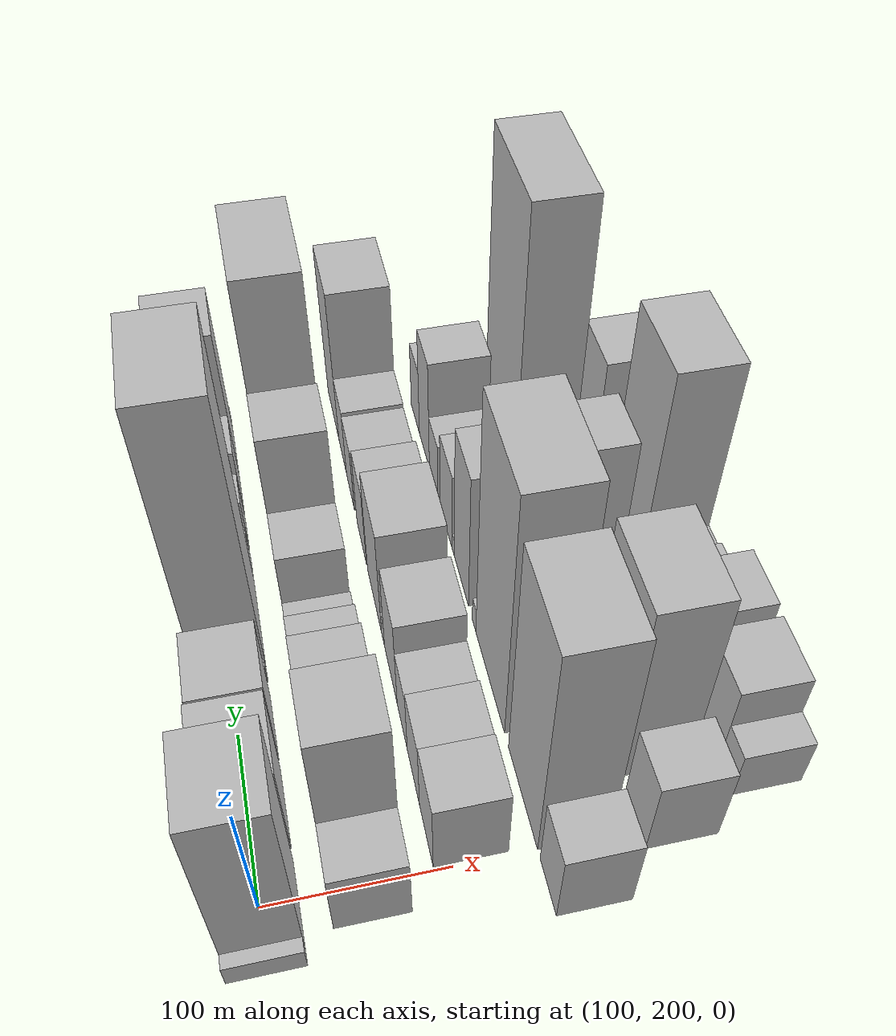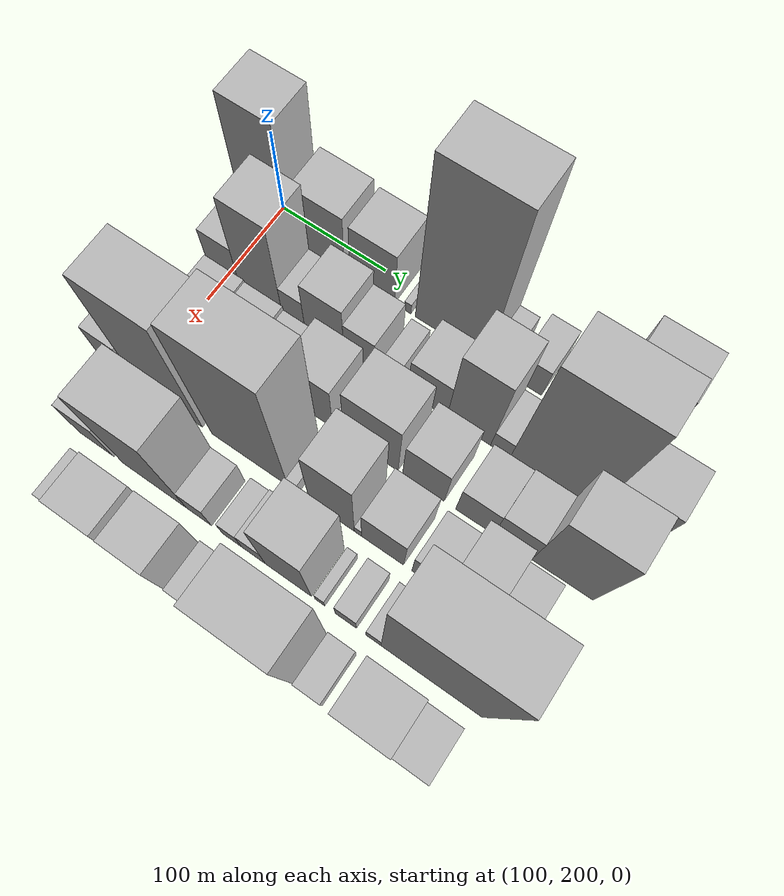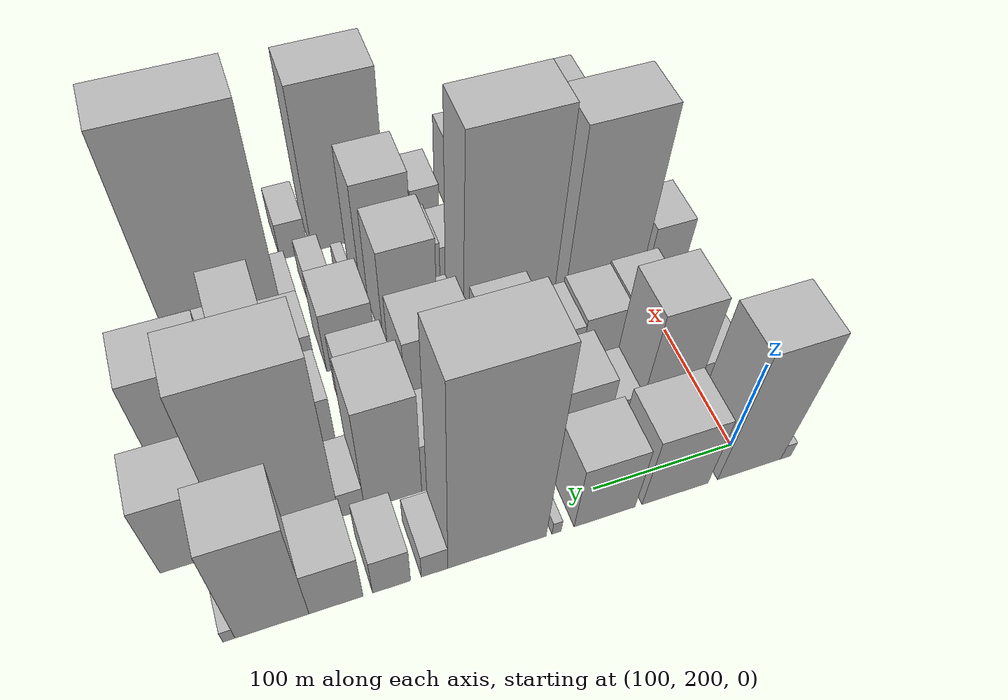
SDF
<sdf version="1.6">
 <world name="default">
  <model name="building_33">
   <static>1</static>
   <pose>100.0000 169.6122 0 0.000000 0.000000 0.000000</pose>
   <link name="link">
    <pose>0 0 9.00 0 0 0</pose>
    <collision name="collision"><geometry><box><size>40.0000 7.5677 18.0000</size></box></geometry></collision>
    <visual name="visual">
     <cast_shadows>0</cast_shadows>
     <geometry><box><size>40.0000 7.5677 18.0000</size></box></geometry>
     <material>
      <script>
       <uri>model://HANNAS_wall/materials/scripts</uri>
       <uri>model://HANNAS_wall/materials/textures</uri>
       <name>vrc/HANNAS_wall</name>
      </script>
     </material>
    </visual>
   </link>
  </model>
  <model name="building_34">
   <static>1</static>
   <pose>100.0000 196.7768 0 0.000000 0.000000 0.000000</pose>
   <link name="link">
    <pose>0 0 73.50 0 0 0</pose>
    <collision name="collision"><geometry><box><size>40.0000 46.7614 147.0000</size></box></geometry></collision>
    <visual name="visual">
     <cast_shadows>0</cast_shadows>
     <geometry><box><size>40.0000 46.7614 147.0000</size></box></geometry>
     <material>
      <script>
       <uri>model://HANNAS_wall/materials/scripts</uri>
       <uri>model://HANNAS_wall/materials/textures</uri>
       <name>vrc/HANNAS_wall</name>
      </script>
     </material>
    </visual>
   </link>
  </model>
  <model name="building_35">
   <static>1</static>
   <pose>100.0000 250.9078 0 0.000000 0.000000 0.000000</pose>
   <link name="link">
    <pose>0 0 40.50 0 0 0</pose>
    <collision name="collision"><geometry><box><size>40.0000 47.5008 81.0000</size></box></geometry></collision>
    <visual name="visual">
     <cast_shadows>0</cast_shadows>
     <geometry><box><size>40.0000 47.5008 81.0000</size></box></geometry>
     <material>
      <script>
       <uri>model://HANNAS_wall/materials/scripts</uri>
       <uri>model://HANNAS_wall/materials/textures</uri>
       <name>vrc/HANNAS_wall</name>
      </script>
     </material>
    </visual>
   </link>
  </model>
  <model name="building_36">
   <static>1</static>
   <pose>100.0000 300.9294 0 0.000000 0.000000 0.000000</pose>
   <link name="link">
    <pose>0 0 37.50 0 0 0</pose>
    <collision name="collision"><geometry><box><size>40.0000 42.5423 75.0000</size></box></geometry></collision>
    <visual name="visual">
     <cast_shadows>0</cast_shadows>
     <geometry><box><size>40.0000 42.5423 75.0000</size></box></geometry>
     <material>
      <script>
       <uri>model://HANNAS_wall/materials/scripts</uri>
       <uri>model://HANNAS_wall/materials/textures</uri>
       <name>vrc/HANNAS_wall</name>
      </script>
     </material>
    </visual>
   </link>
  </model>
  <model name="building_37">
   <static>1</static>
   <pose>100.0000 334.3581 0 0.000000 0.000000 0.000000</pose>
   <link name="link">
    <pose>0 0 7.50 0 0 0</pose>
    <collision name="collision"><geometry><box><size>40.0000 6.3151 15.0000</size></box></geometry></collision>
    <visual name="visual">
     <cast_shadows>0</cast_shadows>
     <geometry><box><size>40.0000 6.3151 15.0000</size></box></geometry>
     <material>
      <script>
       <uri>model://HANNAS_wall/materials/scripts</uri>
       <uri>model://HANNAS_wall/materials/textures</uri>
       <name>vrc/HANNAS_wall</name>
      </script>
     </material>
    </visual>
   </link>
  </model>
  <model name="building_38">
   <static>1</static>
   <pose>100.0000 374.4109 0 0.000000 0.000000 0.000000</pose>
   <link name="link">
    <pose>0 0 109.50 0 0 0</pose>
    <collision name="collision"><geometry><box><size>40.0000 65.7906 219.0000</size></box></geometry></collision>
    <visual name="visual">
     <cast_shadows>0</cast_shadows>
     <geometry><box><size>40.0000 65.7906 219.0000</size></box></geometry>
     <material>
      <script>
       <uri>model://HANNAS_wall/materials/scripts</uri>
       <uri>model://HANNAS_wall/materials/textures</uri>
       <name>vrc/HANNAS_wall</name>
      </script>
     </material>
    </visual>
   </link>
  </model>
  <model name="building_39">
   <static>1</static>
   <pose>100.0000 415.9332 0 0.000000 0.000000 0.000000</pose>
   <link name="link">
    <pose>0 0 15.00 0 0 0</pose>
    <collision name="collision"><geometry><box><size>40.0000 17.2539 30.0000</size></box></geometry></collision>
    <visual name="visual">
     <cast_shadows>0</cast_shadows>
     <geometry><box><size>40.0000 17.2539 30.0000</size></box></geometry>
     <material>
      <script>
       <uri>model://HANNAS_wall/materials/scripts</uri>
       <uri>model://HANNAS_wall/materials/textures</uri>
       <name>vrc/HANNAS_wall</name>
      </script>
     </material>
    </visual>
   </link>
  </model>
  <model name="building_40">
   <static>1</static>
   <pose>100.0000 443.7423 0 0.000000 0.000000 0.000000</pose>
   <link name="link">
    <pose>0 0 22.50 0 0 0</pose>
    <collision name="collision"><geometry><box><size>40.0000 24.3644 45.0000</size></box></geometry></collision>
    <visual name="visual">
     <cast_shadows>0</cast_shadows>
     <geometry><box><size>40.0000 24.3644 45.0000</size></box></geometry>
     <material>
      <script>
       <uri>model://HANNAS_wall/materials/scripts</uri>
       <uri>model://HANNAS_wall/materials/textures</uri>
       <name>vrc/HANNAS_wall</name>
      </script>
     </material>
    </visual>
   </link>
  </model>
  <model name="building_41">
   <static>1</static>
   <pose>100.0000 478.9445 0 0.000000 0.000000 0.000000</pose>
   <link name="link">
    <pose>0 0 28.50 0 0 0</pose>
    <collision name="collision"><geometry><box><size>40.0000 34.0401 57.0000</size></box></geometry></collision>
    <visual name="visual">
     <cast_shadows>0</cast_shadows>
     <geometry><box><size>40.0000 34.0401 57.0000</size></box></geometry>
     <material>
      <script>
       <uri>model://HANNAS_wall/materials/scripts</uri>
       <uri>model://HANNAS_wall/materials/textures</uri>
       <name>vrc/HANNAS_wall</name>
      </script>
     </material>
    </visual>
   </link>
  </model>
  <model name="building_42">
   <static>1</static>
   <pose>100.0000 518.6158 0 0.000000 0.000000 0.000000</pose>
   <link name="link">
    <pose>0 0 61.50 0 0 0</pose>
    <collision name="collision"><geometry><box><size>40.0000 45.3024 123.0000</size></box></geometry></collision>
    <visual name="visual">
     <cast_shadows>0</cast_shadows>
     <geometry><box><size>40.0000 45.3024 123.0000</size></box></geometry>
     <material>
      <script>
       <uri>model://HANNAS_wall/materials/scripts</uri>
       <uri>model://HANNAS_wall/materials/textures</uri>
       <name>vrc/HANNAS_wall</name>
      </script>
     </material>
    </visual>
   </link>
  </model>
  <model name="building_43">
   <static>1</static>
   <pose>100.0000 544.9368 0 0.000000 0.000000 0.000000</pose>
   <link name="link">
    <pose>0 0 7.50 0 0 0</pose>
    <collision name="collision"><geometry><box><size>40.0000 7.3397 15.0000</size></box></geometry></collision>
    <visual name="visual">
     <cast_shadows>0</cast_shadows>
     <geometry><box><size>40.0000 7.3397 15.0000</size></box></geometry>
     <material>
      <script>
       <uri>model://HANNAS_wall/materials/scripts</uri>
       <uri>model://HANNAS_wall/materials/textures</uri>
       <name>vrc/HANNAS_wall</name>
      </script>
     </material>
    </visual>
   </link>
  </model>
  <model name="building_84">
   <static>1</static>
   <pose>155.0000 196.5373 0 0.000000 0.000000 0.000000</pose>
   <link name="link">
    <pose>0 0 27.00 0 0 0</pose>
    <collision name="collision"><geometry><box><size>40.0000 30.7528 54.0000</size></box></geometry></collision>
    <visual name="visual">
     <cast_shadows>0</cast_shadows>
     <geometry><box><size>40.0000 30.7528 54.0000</size></box></geometry>
     <material>
      <script>
       <uri>model://HANNAS_wall/materials/scripts</uri>
       <uri>model://HANNAS_wall/materials/textures</uri>
       <name>vrc/HANNAS_wall</name>
      </script>
     </material>
    </visual>
   </link>
  </model>
  <model name="building_85">
   <static>1</static>
   <pose>155.0000 232.6699 0 0.000000 0.000000 0.000000</pose>
   <link name="link">
    <pose>0 0 63.00 0 0 0</pose>
    <collision name="collision"><geometry><box><size>40.0000 41.5122 126.0000</size></box></geometry></collision>
    <visual name="visual">
     <cast_shadows>0</cast_shadows>
     <geometry><box><size>40.0000 41.5122 126.0000</size></box></geometry>
     <material>
      <script>
       <uri>model://HANNAS_wall/materials/scripts</uri>
       <uri>model://HANNAS_wall/materials/textures</uri>
       <name>vrc/HANNAS_wall</name>
      </script>
     </material>
    </visual>
   </link>
  </model>
  <model name="building_86">
   <static>1</static>
   <pose>155.0000 264.3612 0 0.000000 0.000000 0.000000</pose>
   <link name="link">
    <pose>0 0 19.50 0 0 0</pose>
    <collision name="collision"><geometry><box><size>40.0000 21.8704 39.0000</size></box></geometry></collision>
    <visual name="visual">
     <cast_shadows>0</cast_shadows>
     <geometry><box><size>40.0000 21.8704 39.0000</size></box></geometry>
     <material>
      <script>
       <uri>model://HANNAS_wall/materials/scripts</uri>
       <uri>model://HANNAS_wall/materials/textures</uri>
       <name>vrc/HANNAS_wall</name>
      </script>
     </material>
    </visual>
   </link>
  </model>
  <model name="building_87">
   <static>1</static>
   <pose>155.0000 293.8283 0 0.000000 0.000000 0.000000</pose>
   <link name="link">
    <pose>0 0 34.50 0 0 0</pose>
    <collision name="collision"><geometry><box><size>40.0000 37.0640 69.0000</size></box></geometry></collision>
    <visual name="visual">
     <cast_shadows>0</cast_shadows>
     <geometry><box><size>40.0000 37.0640 69.0000</size></box></geometry>
     <material>
      <script>
       <uri>model://HANNAS_wall/materials/scripts</uri>
       <uri>model://HANNAS_wall/materials/textures</uri>
       <name>vrc/HANNAS_wall</name>
      </script>
     </material>
    </visual>
   </link>
  </model>
  <model name="building_88">
   <static>1</static>
   <pose>155.0000 326.4715 0 0.000000 0.000000 0.000000</pose>
   <link name="link">
    <pose>0 0 24.00 0 0 0</pose>
    <collision name="collision"><geometry><box><size>40.0000 28.2224 48.0000</size></box></geometry></collision>
    <visual name="visual">
     <cast_shadows>0</cast_shadows>
     <geometry><box><size>40.0000 28.2224 48.0000</size></box></geometry>
     <material>
      <script>
       <uri>model://HANNAS_wall/materials/scripts</uri>
       <uri>model://HANNAS_wall/materials/textures</uri>
       <name>vrc/HANNAS_wall</name>
      </script>
     </material>
    </visual>
   </link>
  </model>
  <model name="building_89">
   <static>1</static>
   <pose>155.0000 354.9093 0 0.000000 0.000000 0.000000</pose>
   <link name="link">
    <pose>0 0 15.00 0 0 0</pose>
    <collision name="collision"><geometry><box><size>40.0000 16.6532 30.0000</size></box></geometry></collision>
    <visual name="visual">
     <cast_shadows>0</cast_shadows>
     <geometry><box><size>40.0000 16.6532 30.0000</size></box></geometry>
     <material>
      <script>
       <uri>model://HANNAS_wall/materials/scripts</uri>
       <uri>model://HANNAS_wall/materials/textures</uri>
       <name>vrc/HANNAS_wall</name>
      </script>
     </material>
    </visual>
   </link>
  </model>
  <model name="building_90">
   <static>1</static>
   <pose>155.0000 388.9007 0 0.000000 0.000000 0.000000</pose>
   <link name="link">
    <pose>0 0 30.00 0 0 0</pose>
    <collision name="collision"><geometry><box><size>40.0000 35.3295 60.0000</size></box></geometry></collision>
    <visual name="visual">
     <cast_shadows>0</cast_shadows>
     <geometry><box><size>40.0000 35.3295 60.0000</size></box></geometry>
     <material>
      <script>
       <uri>model://HANNAS_wall/materials/scripts</uri>
       <uri>model://HANNAS_wall/materials/textures</uri>
       <name>vrc/HANNAS_wall</name>
      </script>
     </material>
    </visual>
   </link>
  </model>
  <model name="building_91">
   <static>1</static>
   <pose>155.0000 425.8558 0 0.000000 0.000000 0.000000</pose>
   <link name="link">
    <pose>0 0 60.00 0 0 0</pose>
    <collision name="collision"><geometry><box><size>40.0000 38.5809 120.0000</size></box></geometry></collision>
    <visual name="visual">
     <cast_shadows>0</cast_shadows>
     <geometry><box><size>40.0000 38.5809 120.0000</size></box></geometry>
     <material>
      <script>
       <uri>model://HANNAS_wall/materials/scripts</uri>
       <uri>model://HANNAS_wall/materials/textures</uri>
       <name>vrc/HANNAS_wall</name>
      </script>
     </material>
    </visual>
   </link>
  </model>
  <model name="building_92">
   <static>1</static>
   <pose>155.0000 453.5661 0 0.000000 0.000000 0.000000</pose>
   <link name="link">
    <pose>0 0 15.00 0 0 0</pose>
    <collision name="collision"><geometry><box><size>40.0000 16.8396 30.0000</size></box></geometry></collision>
    <visual name="visual">
     <cast_shadows>0</cast_shadows>
     <geometry><box><size>40.0000 16.8396 30.0000</size></box></geometry>
     <material>
      <script>
       <uri>model://HANNAS_wall/materials/scripts</uri>
       <uri>model://HANNAS_wall/materials/textures</uri>
       <name>vrc/HANNAS_wall</name>
      </script>
     </material>
    </visual>
   </link>
  </model>
  <model name="building_93">
   <static>1</static>
   <pose>155.0000 497.3626 0 0.000000 0.000000 0.000000</pose>
   <link name="link">
    <pose>0 0 93.00 0 0 0</pose>
    <collision name="collision"><geometry><box><size>40.0000 70.7535 186.0000</size></box></geometry></collision>
    <visual name="visual">
     <cast_shadows>0</cast_shadows>
     <geometry><box><size>40.0000 70.7535 186.0000</size></box></geometry>
     <material>
      <script>
       <uri>model://HANNAS_wall/materials/scripts</uri>
       <uri>model://HANNAS_wall/materials/textures</uri>
       <name>vrc/HANNAS_wall</name>
      </script>
     </material>
    </visual>
   </link>
  </model>
  <model name="building_94">
   <static>1</static>
   <pose>155.0000 554.8558 0 0.000000 0.000000 0.000000</pose>
   <link name="link">
    <pose>0 0 42.00 0 0 0</pose>
    <collision name="collision"><geometry><box><size>40.0000 44.2329 84.0000</size></box></geometry></collision>
    <visual name="visual">
     <cast_shadows>0</cast_shadows>
     <geometry><box><size>40.0000 44.2329 84.0000</size></box></geometry>
     <material>
      <script>
       <uri>model://HANNAS_wall/materials/scripts</uri>
       <uri>model://HANNAS_wall/materials/textures</uri>
       <name>vrc/HANNAS_wall</name>
      </script>
     </material>
    </visual>
   </link>
  </model>
  <model name="building_137">
   <static>1</static>
   <pose>210.0000 219.6346 0 0.000000 0.000000 0.000000</pose>
   <link name="link">
    <pose>0 0 30.00 0 0 0</pose>
    <collision name="collision"><geometry><box><size>40.0000 35.5399 60.0000</size></box></geometry></collision>
    <visual name="visual">
     <cast_shadows>0</cast_shadows>
     <geometry><box><size>40.0000 35.5399 60.0000</size></box></geometry>
     <material>
      <script>
       <uri>model://HANNAS_wall/materials/scripts</uri>
       <uri>model://HANNAS_wall/materials/textures</uri>
       <name>vrc/HANNAS_wall</name>
      </script>
     </material>
    </visual>
   </link>
  </model>
  <model name="building_138">
   <static>1</static>
   <pose>210.0000 254.4407 0 0.000000 0.000000 0.000000</pose>
   <link name="link">
    <pose>0 0 28.50 0 0 0</pose>
    <collision name="collision"><geometry><box><size>40.0000 34.0722 57.0000</size></box></geometry></collision>
    <visual name="visual">
     <cast_shadows>0</cast_shadows>
     <geometry><box><size>40.0000 34.0722 57.0000</size></box></geometry>
     <material>
      <script>
       <uri>model://HANNAS_wall/materials/scripts</uri>
       <uri>model://HANNAS_wall/materials/textures</uri>
       <name>vrc/HANNAS_wall</name>
      </script>
     </material>
    </visual>
   </link>
  </model>
  <model name="building_139">
   <static>1</static>
   <pose>210.0000 286.2911 0 0.000000 0.000000 0.000000</pose>
   <link name="link">
    <pose>0 0 25.50 0 0 0</pose>
    <collision name="collision"><geometry><box><size>40.0000 29.6286 51.0000</size></box></geometry></collision>
    <visual name="visual">
     <cast_shadows>0</cast_shadows>
     <geometry><box><size>40.0000 29.6286 51.0000</size></box></geometry>
     <material>
      <script>
       <uri>model://HANNAS_wall/materials/scripts</uri>
       <uri>model://HANNAS_wall/materials/textures</uri>
       <name>vrc/HANNAS_wall</name>
      </script>
     </material>
    </visual>
   </link>
  </model>
  <model name="building_140">
   <static>1</static>
   <pose>210.0000 321.1062 0 0.000000 0.000000 0.000000</pose>
   <link name="link">
    <pose>0 0 37.50 0 0 0</pose>
    <collision name="collision"><geometry><box><size>40.0000 40.0016 75.0000</size></box></geometry></collision>
    <visual name="visual">
     <cast_shadows>0</cast_shadows>
     <geometry><box><size>40.0000 40.0016 75.0000</size></box></geometry>
     <material>
      <script>
       <uri>model://HANNAS_wall/materials/scripts</uri>
       <uri>model://HANNAS_wall/materials/textures</uri>
       <name>vrc/HANNAS_wall</name>
      </script>
     </material>
    </visual>
   </link>
  </model>
  <model name="building_141">
   <static>1</static>
   <pose>210.0000 345.9847 0 0.000000 0.000000 0.000000</pose>
   <link name="link">
    <pose>0 0 10.50 0 0 0</pose>
    <collision name="collision"><geometry><box><size>40.0000 9.7555 21.0000</size></box></geometry></collision>
    <visual name="visual">
     <cast_shadows>0</cast_shadows>
     <geometry><box><size>40.0000 9.7555 21.0000</size></box></geometry>
     <material>
      <script>
       <uri>model://HANNAS_wall/materials/scripts</uri>
       <uri>model://HANNAS_wall/materials/textures</uri>
       <name>vrc/HANNAS_wall</name>
      </script>
     </material>
    </visual>
   </link>
  </model>
  <model name="building_142">
   <static>1</static>
   <pose>210.0000 375.2135 0 0.000000 0.000000 0.000000</pose>
   <link name="link">
    <pose>0 0 45.00 0 0 0</pose>
    <collision name="collision"><geometry><box><size>40.0000 48.7020 90.0000</size></box></geometry></collision>
    <visual name="visual">
     <cast_shadows>0</cast_shadows>
     <geometry><box><size>40.0000 48.7020 90.0000</size></box></geometry>
     <material>
      <script>
       <uri>model://HANNAS_wall/materials/scripts</uri>
       <uri>model://HANNAS_wall/materials/textures</uri>
       <name>vrc/HANNAS_wall</name>
      </script>
     </material>
    </visual>
   </link>
  </model>
  <model name="building_143">
   <static>1</static>
   <pose>210.0000 421.7275 0 0.000000 0.000000 0.000000</pose>
   <link name="link">
    <pose>0 0 33.00 0 0 0</pose>
    <collision name="collision"><geometry><box><size>40.0000 36.3261 66.0000</size></box></geometry></collision>
    <visual name="visual">
     <cast_shadows>0</cast_shadows>
     <geometry><box><size>40.0000 36.3261 66.0000</size></box></geometry>
     <material>
      <script>
       <uri>model://HANNAS_wall/materials/scripts</uri>
       <uri>model://HANNAS_wall/materials/textures</uri>
       <name>vrc/HANNAS_wall</name>
      </script>
     </material>
    </visual>
   </link>
  </model>
  <model name="building_144">
   <static>1</static>
   <pose>210.0000 465.9699 0 0.000000 0.000000 0.000000</pose>
   <link name="link">
    <pose>0 0 27.00 0 0 0</pose>
    <collision name="collision"><geometry><box><size>40.0000 32.1586 54.0000</size></box></geometry></collision>
    <visual name="visual">
     <cast_shadows>0</cast_shadows>
     <geometry><box><size>40.0000 32.1586 54.0000</size></box></geometry>
     <material>
      <script>
       <uri>model://HANNAS_wall/materials/scripts</uri>
       <uri>model://HANNAS_wall/materials/textures</uri>
       <name>vrc/HANNAS_wall</name>
      </script>
     </material>
    </visual>
   </link>
  </model>
  <model name="building_145">
   <static>1</static>
   <pose>210.0000 498.1794 0 0.000000 0.000000 0.000000</pose>
   <link name="link">
    <pose>0 0 28.50 0 0 0</pose>
    <collision name="collision"><geometry><box><size>40.0000 32.2605 57.0000</size></box></geometry></collision>
    <visual name="visual">
     <cast_shadows>0</cast_shadows>
     <geometry><box><size>40.0000 32.2605 57.0000</size></box></geometry>
     <material>
      <script>
       <uri>model://HANNAS_wall/materials/scripts</uri>
       <uri>model://HANNAS_wall/materials/textures</uri>
       <name>vrc/HANNAS_wall</name>
      </script>
     </material>
    </visual>
   </link>
  </model>
  <model name="building_146">
   <static>1</static>
   <pose>210.0000 539.4197 0 0.000000 0.000000 0.000000</pose>
   <link name="link">
    <pose>0 0 63.00 0 0 0</pose>
    <collision name="collision"><geometry><box><size>40.0000 50.2202 126.0000</size></box></geometry></collision>
    <visual name="visual">
     <cast_shadows>0</cast_shadows>
     <geometry><box><size>40.0000 50.2202 126.0000</size></box></geometry>
     <material>
      <script>
       <uri>model://HANNAS_wall/materials/scripts</uri>
       <uri>model://HANNAS_wall/materials/textures</uri>
       <name>vrc/HANNAS_wall</name>
      </script>
     </material>
    </visual>
   </link>
  </model>
  <model name="building_186">
   <static>1</static>
   <pose>265.0000 179.0786 0 0.000000 0.000000 0.000000</pose>
   <link name="link">
    <pose>0 0 30.00 0 0 0</pose>
    <collision name="collision"><geometry><box><size>40.0000 31.0062 60.0000</size></box></geometry></collision>
    <visual name="visual">
     <cast_shadows>0</cast_shadows>
     <geometry><box><size>40.0000 31.0062 60.0000</size></box></geometry>
     <material>
      <script>
       <uri>model://HANNAS_wall/materials/scripts</uri>
       <uri>model://HANNAS_wall/materials/textures</uri>
       <name>vrc/HANNAS_wall</name>
      </script>
     </material>
    </visual>
   </link>
  </model>
  <model name="building_187">
   <static>1</static>
   <pose>265.0000 230.2697 0 0.000000 0.000000 0.000000</pose>
   <link name="link">
    <pose>0 0 90.00 0 0 0</pose>
    <collision name="collision"><geometry><box><size>40.0000 61.3760 180.0000</size></box></geometry></collision>
    <visual name="visual">
     <cast_shadows>0</cast_shadows>
     <geometry><box><size>40.0000 61.3760 180.0000</size></box></geometry>
     <material>
      <script>
       <uri>model://HANNAS_wall/materials/scripts</uri>
       <uri>model://HANNAS_wall/materials/textures</uri>
       <name>vrc/HANNAS_wall</name>
      </script>
     </material>
    </visual>
   </link>
  </model>
  <model name="building_188">
   <static>1</static>
   <pose>265.0000 304.8523 0 0.000000 0.000000 0.000000</pose>
   <link name="link">
    <pose>0 0 100.50 0 0 0</pose>
    <collision name="collision"><geometry><box><size>40.0000 69.7894 201.0000</size></box></geometry></collision>
    <visual name="visual">
     <cast_shadows>0</cast_shadows>
     <geometry><box><size>40.0000 69.7894 201.0000</size></box></geometry>
     <material>
      <script>
       <uri>model://HANNAS_wall/materials/scripts</uri>
       <uri>model://HANNAS_wall/materials/textures</uri>
       <name>vrc/HANNAS_wall</name>
      </script>
     </material>
    </visual>
   </link>
  </model>
  <model name="building_189">
   <static>1</static>
   <pose>265.0000 344.5696 0 0.000000 0.000000 0.000000</pose>
   <link name="link">
    <pose>0 0 10.50 0 0 0</pose>
    <collision name="collision"><geometry><box><size>40.0000 9.6451 21.0000</size></box></geometry></collision>
    <visual name="visual">
     <cast_shadows>0</cast_shadows>
     <geometry><box><size>40.0000 9.6451 21.0000</size></box></geometry>
     <material>
      <script>
       <uri>model://HANNAS_wall/materials/scripts</uri>
       <uri>model://HANNAS_wall/materials/textures</uri>
       <name>vrc/HANNAS_wall</name>
      </script>
     </material>
    </visual>
   </link>
  </model>
  <model name="building_190">
   <static>1</static>
   <pose>265.0000 379.1033 0 0.000000 0.000000 0.000000</pose>
   <link name="link">
    <pose>0 0 57.00 0 0 0</pose>
    <collision name="collision"><geometry><box><size>40.0000 39.4224 114.0000</size></box></geometry></collision>
    <visual name="visual">
     <cast_shadows>0</cast_shadows>
     <geometry><box><size>40.0000 39.4224 114.0000</size></box></geometry>
     <material>
      <script>
       <uri>model://HANNAS_wall/materials/scripts</uri>
       <uri>model://HANNAS_wall/materials/textures</uri>
       <name>vrc/HANNAS_wall</name>
      </script>
     </material>
    </visual>
   </link>
  </model>
  <model name="building_191">
   <static>1</static>
   <pose>265.0000 401.9588 0 0.000000 0.000000 0.000000</pose>
   <link name="link">
    <pose>0 0 7.50 0 0 0</pose>
    <collision name="collision"><geometry><box><size>40.0000 6.2884 15.0000</size></box></geometry></collision>
    <visual name="visual">
     <cast_shadows>0</cast_shadows>
     <geometry><box><size>40.0000 6.2884 15.0000</size></box></geometry>
     <material>
      <script>
       <uri>model://HANNAS_wall/materials/scripts</uri>
       <uri>model://HANNAS_wall/materials/textures</uri>
       <name>vrc/HANNAS_wall</name>
      </script>
     </material>
    </visual>
   </link>
  </model>
  <model name="building_192">
   <static>1</static>
   <pose>265.0000 423.2404 0 0.000000 0.000000 0.000000</pose>
   <link name="link">
    <pose>0 0 33.00 0 0 0</pose>
    <collision name="collision"><geometry><box><size>40.0000 36.2750 66.0000</size></box></geometry></collision>
    <visual name="visual">
     <cast_shadows>0</cast_shadows>
     <geometry><box><size>40.0000 36.2750 66.0000</size></box></geometry>
     <material>
      <script>
       <uri>model://HANNAS_wall/materials/scripts</uri>
       <uri>model://HANNAS_wall/materials/textures</uri>
       <name>vrc/HANNAS_wall</name>
      </script>
     </material>
    </visual>
   </link>
  </model>
  <model name="building_193">
   <static>1</static>
   <pose>265.0000 462.0108 0 0.000000 0.000000 0.000000</pose>
   <link name="link">
    <pose>0 0 24.00 0 0 0</pose>
    <collision name="collision"><geometry><box><size>40.0000 27.2659 48.0000</size></box></geometry></collision>
    <visual name="visual">
     <cast_shadows>0</cast_shadows>
     <geometry><box><size>40.0000 27.2659 48.0000</size></box></geometry>
     <material>
      <script>
       <uri>model://HANNAS_wall/materials/scripts</uri>
       <uri>model://HANNAS_wall/materials/textures</uri>
       <name>vrc/HANNAS_wall</name>
      </script>
     </material>
    </visual>
   </link>
  </model>
  <model name="building_194">
   <static>1</static>
   <pose>265.0000 492.3720 0 0.000000 0.000000 0.000000</pose>
   <link name="link">
    <pose>0 0 46.50 0 0 0</pose>
    <collision name="collision"><geometry><box><size>40.0000 33.4565 93.0000</size></box></geometry></collision>
    <visual name="visual">
     <cast_shadows>0</cast_shadows>
     <geometry><box><size>40.0000 33.4565 93.0000</size></box></geometry>
     <material>
      <script>
       <uri>model://HANNAS_wall/materials/scripts</uri>
       <uri>model://HANNAS_wall/materials/textures</uri>
       <name>vrc/HANNAS_wall</name>
      </script>
     </material>
    </visual>
   </link>
  </model>
  <model name="building_195">
   <static>1</static>
   <pose>265.0000 523.4497 0 0.000000 0.000000 0.000000</pose>
   <link name="link">
    <pose>0 0 28.50 0 0 0</pose>
    <collision name="collision"><geometry><box><size>40.0000 28.6988 57.0000</size></box></geometry></collision>
    <visual name="visual">
     <cast_shadows>0</cast_shadows>
     <geometry><box><size>40.0000 28.6988 57.0000</size></box></geometry>
     <material>
      <script>
       <uri>model://HANNAS_wall/materials/scripts</uri>
       <uri>model://HANNAS_wall/materials/textures</uri>
       <name>vrc/HANNAS_wall</name>
      </script>
     </material>
    </visual>
   </link>
  </model>
  <model name="building_236">
   <static>1</static>
   <pose>320.0000 204.7021 0 0.000000 0.000000 0.000000</pose>
   <link name="link">
    <pose>0 0 31.50 0 0 0</pose>
    <collision name="collision"><geometry><box><size>40.0000 33.5290 63.0000</size></box></geometry></collision>
    <visual name="visual">
     <cast_shadows>0</cast_shadows>
     <geometry><box><size>40.0000 33.5290 63.0000</size></box></geometry>
     <material>
      <script>
       <uri>model://HANNAS_wall/materials/scripts</uri>
       <uri>model://HANNAS_wall/materials/textures</uri>
       <name>vrc/HANNAS_wall</name>
      </script>
     </material>
    </visual>
   </link>
  </model>
  <model name="building_237">
   <static>1</static>
   <pose>320.0000 259.9077 0 0.000000 0.000000 0.000000</pose>
   <link name="link">
    <pose>0 0 75.00 0 0 0</pose>
    <collision name="collision"><geometry><box><size>40.0000 58.8821 150.0000</size></box></geometry></collision>
    <visual name="visual">
     <cast_shadows>0</cast_shadows>
     <geometry><box><size>40.0000 58.8821 150.0000</size></box></geometry>
     <material>
      <script>
       <uri>model://HANNAS_wall/materials/scripts</uri>
       <uri>model://HANNAS_wall/materials/textures</uri>
       <name>vrc/HANNAS_wall</name>
      </script>
     </material>
    </visual>
   </link>
  </model>
  <model name="building_238">
   <static>1</static>
   <pose>320.0000 300.6739 0 0.000000 0.000000 0.000000</pose>
   <link name="link">
    <pose>0 0 22.50 0 0 0</pose>
    <collision name="collision"><geometry><box><size>40.0000 22.6503 45.0000</size></box></geometry></collision>
    <visual name="visual">
     <cast_shadows>0</cast_shadows>
     <geometry><box><size>40.0000 22.6503 45.0000</size></box></geometry>
     <material>
      <script>
       <uri>model://HANNAS_wall/materials/scripts</uri>
       <uri>model://HANNAS_wall/materials/textures</uri>
       <name>vrc/HANNAS_wall</name>
      </script>
     </material>
    </visual>
   </link>
  </model>
  <model name="building_239">
   <static>1</static>
   <pose>320.0000 330.5498 0 0.000000 0.000000 0.000000</pose>
   <link name="link">
    <pose>0 0 16.50 0 0 0</pose>
    <collision name="collision"><geometry><box><size>40.0000 17.1015 33.0000</size></box></geometry></collision>
    <visual name="visual">
     <cast_shadows>0</cast_shadows>
     <geometry><box><size>40.0000 17.1015 33.0000</size></box></geometry>
     <material>
      <script>
       <uri>model://HANNAS_wall/materials/scripts</uri>
       <uri>model://HANNAS_wall/materials/textures</uri>
       <name>vrc/HANNAS_wall</name>
      </script>
     </material>
    </visual>
   </link>
  </model>
  <model name="building_240">
   <static>1</static>
   <pose>320.0000 349.6865 0 0.000000 0.000000 0.000000</pose>
   <link name="link">
    <pose>0 0 19.50 0 0 0</pose>
    <collision name="collision"><geometry><box><size>40.0000 21.1720 39.0000</size></box></geometry></collision>
    <visual name="visual">
     <cast_shadows>0</cast_shadows>
     <geometry><box><size>40.0000 21.1720 39.0000</size></box></geometry>
     <material>
      <script>
       <uri>model://HANNAS_wall/materials/scripts</uri>
       <uri>model://HANNAS_wall/materials/textures</uri>
       <name>vrc/HANNAS_wall</name>
      </script>
     </material>
    </visual>
   </link>
  </model>
  <model name="building_241">
   <static>1</static>
   <pose>320.0000 380.4392 0 0.000000 0.000000 0.000000</pose>
   <link name="link">
    <pose>0 0 60.00 0 0 0</pose>
    <collision name="collision"><geometry><box><size>40.0000 40.3333 120.0000</size></box></geometry></collision>
    <visual name="visual">
     <cast_shadows>0</cast_shadows>
     <geometry><box><size>40.0000 40.3333 120.0000</size></box></geometry>
     <material>
      <script>
       <uri>model://HANNAS_wall/materials/scripts</uri>
       <uri>model://HANNAS_wall/materials/textures</uri>
       <name>vrc/HANNAS_wall</name>
      </script>
     </material>
    </visual>
   </link>
  </model>
  <model name="building_242">
   <static>1</static>
   <pose>320.0000 407.8138 0 0.000000 0.000000 0.000000</pose>
   <link name="link">
    <pose>0 0 10.50 0 0 0</pose>
    <collision name="collision"><geometry><box><size>40.0000 8.4160 21.0000</size></box></geometry></collision>
    <visual name="visual">
     <cast_shadows>0</cast_shadows>
     <geometry><box><size>40.0000 8.4160 21.0000</size></box></geometry>
     <material>
      <script>
       <uri>model://HANNAS_wall/materials/scripts</uri>
       <uri>model://HANNAS_wall/materials/textures</uri>
       <name>vrc/HANNAS_wall</name>
      </script>
     </material>
    </visual>
   </link>
  </model>
  <model name="building_243">
   <static>1</static>
   <pose>320.0000 430.0293 0 0.000000 0.000000 0.000000</pose>
   <link name="link">
    <pose>0 0 18.00 0 0 0</pose>
    <collision name="collision"><geometry><box><size>40.0000 18.0151 36.0000</size></box></geometry></collision>
    <visual name="visual">
     <cast_shadows>0</cast_shadows>
     <geometry><box><size>40.0000 18.0151 36.0000</size></box></geometry>
     <material>
      <script>
       <uri>model://HANNAS_wall/materials/scripts</uri>
       <uri>model://HANNAS_wall/materials/textures</uri>
       <name>vrc/HANNAS_wall</name>
      </script>
     </material>
    </visual>
   </link>
  </model>
  <model name="building_244">
   <static>1</static>
   <pose>320.0000 453.2432 0 0.000000 0.000000 0.000000</pose>
   <link name="link">
    <pose>0 0 13.50 0 0 0</pose>
    <collision name="collision"><geometry><box><size>40.0000 12.4126 27.0000</size></box></geometry></collision>
    <visual name="visual">
     <cast_shadows>0</cast_shadows>
     <geometry><box><size>40.0000 12.4126 27.0000</size></box></geometry>
     <material>
      <script>
       <uri>model://HANNAS_wall/materials/scripts</uri>
       <uri>model://HANNAS_wall/materials/textures</uri>
       <name>vrc/HANNAS_wall</name>
      </script>
     </material>
    </visual>
   </link>
  </model>
  <model name="building_245">
   <static>1</static>
   <pose>320.0000 500.8668 0 0.000000 0.000000 0.000000</pose>
   <link name="link">
    <pose>0 0 106.50 0 0 0</pose>
    <collision name="collision"><geometry><box><size>40.0000 82.8346 213.0000</size></box></geometry></collision>
    <visual name="visual">
     <cast_shadows>0</cast_shadows>
     <geometry><box><size>40.0000 82.8346 213.0000</size></box></geometry>
     <material>
      <script>
       <uri>model://HANNAS_wall/materials/scripts</uri>
       <uri>model://HANNAS_wall/materials/textures</uri>
       <name>vrc/HANNAS_wall</name>
      </script>
     </material>
    </visual>
   </link>
  </model>
  <model name="building_288">
   <static>1</static>
   <pose>375.0000 217.2233 0 0.000000 0.000000 0.000000</pose>
   <link name="link">
    <pose>0 0 19.50 0 0 0</pose>
    <collision name="collision"><geometry><box><size>40.0000 19.8703 39.0000</size></box></geometry></collision>
    <visual name="visual">
     <cast_shadows>0</cast_shadows>
     <geometry><box><size>40.0000 19.8703 39.0000</size></box></geometry>
     <material>
      <script>
       <uri>model://HANNAS_wall/materials/scripts</uri>
       <uri>model://HANNAS_wall/materials/textures</uri>
       <name>vrc/HANNAS_wall</name>
      </script>
     </material>
    </visual>
   </link>
  </model>
  <model name="building_289">
   <static>1</static>
   <pose>375.0000 247.7593 0 0.000000 0.000000 0.000000</pose>
   <link name="link">
    <pose>0 0 34.50 0 0 0</pose>
    <collision name="collision"><geometry><box><size>40.0000 41.2018 69.0000</size></box></geometry></collision>
    <visual name="visual">
     <cast_shadows>0</cast_shadows>
     <geometry><box><size>40.0000 41.2018 69.0000</size></box></geometry>
     <material>
      <script>
       <uri>model://HANNAS_wall/materials/scripts</uri>
       <uri>model://HANNAS_wall/materials/textures</uri>
       <name>vrc/HANNAS_wall</name>
      </script>
     </material>
    </visual>
   </link>
  </model>
  <model name="building_290">
   <static>1</static>
   <pose>375.0000 293.3591 0 0.000000 0.000000 0.000000</pose>
   <link name="link">
    <pose>0 0 36.00 0 0 0</pose>
    <collision name="collision"><geometry><box><size>40.0000 37.9977 72.0000</size></box></geometry></collision>
    <visual name="visual">
     <cast_shadows>0</cast_shadows>
     <geometry><box><size>40.0000 37.9977 72.0000</size></box></geometry>
     <material>
      <script>
       <uri>model://HANNAS_wall/materials/scripts</uri>
       <uri>model://HANNAS_wall/materials/textures</uri>
       <name>vrc/HANNAS_wall</name>
      </script>
     </material>
    </visual>
   </link>
  </model>
  <model name="building_291">
   <static>1</static>
   <pose>375.0000 333.0026 0 0.000000 0.000000 0.000000</pose>
   <link name="link">
    <pose>0 0 19.50 0 0 0</pose>
    <collision name="collision"><geometry><box><size>40.0000 23.2893 39.0000</size></box></geometry></collision>
    <visual name="visual">
     <cast_shadows>0</cast_shadows>
     <geometry><box><size>40.0000 23.2893 39.0000</size></box></geometry>
     <material>
      <script>
       <uri>model://HANNAS_wall/materials/scripts</uri>
       <uri>model://HANNAS_wall/materials/textures</uri>
       <name>vrc/HANNAS_wall</name>
      </script>
     </material>
    </visual>
   </link>
  </model>
  <model name="building_292">
   <static>1</static>
   <pose>375.0000 354.1022 0 0.000000 0.000000 0.000000</pose>
   <link name="link">
    <pose>0 0 16.50 0 0 0</pose>
    <collision name="collision"><geometry><box><size>40.0000 18.9100 33.0000</size></box></geometry></collision>
    <visual name="visual">
     <cast_shadows>0</cast_shadows>
     <geometry><box><size>40.0000 18.9100 33.0000</size></box></geometry>
     <material>
      <script>
       <uri>model://HANNAS_wall/materials/scripts</uri>
       <uri>model://HANNAS_wall/materials/textures</uri>
       <name>vrc/HANNAS_wall</name>
      </script>
     </material>
    </visual>
   </link>
  </model>
  <model name="building_293">
   <static>1</static>
   <pose>375.0000 393.8731 0 0.000000 0.000000 0.000000</pose>
   <link name="link">
    <pose>0 0 82.50 0 0 0</pose>
    <collision name="collision"><geometry><box><size>40.0000 60.6318 165.0000</size></box></geometry></collision>
    <visual name="visual">
     <cast_shadows>0</cast_shadows>
     <geometry><box><size>40.0000 60.6318 165.0000</size></box></geometry>
     <material>
      <script>
       <uri>model://HANNAS_wall/materials/scripts</uri>
       <uri>model://HANNAS_wall/materials/textures</uri>
       <name>vrc/HANNAS_wall</name>
      </script>
     </material>
    </visual>
   </link>
  </model>
  <model name="building_294">
   <static>1</static>
   <pose>375.0000 438.1693 0 0.000000 0.000000 0.000000</pose>
   <link name="link">
    <pose>0 0 19.50 0 0 0</pose>
    <collision name="collision"><geometry><box><size>40.0000 21.9605 39.0000</size></box></geometry></collision>
    <visual name="visual">
     <cast_shadows>0</cast_shadows>
     <geometry><box><size>40.0000 21.9605 39.0000</size></box></geometry>
     <material>
      <script>
       <uri>model://HANNAS_wall/materials/scripts</uri>
       <uri>model://HANNAS_wall/materials/textures</uri>
       <name>vrc/HANNAS_wall</name>
      </script>
     </material>
    </visual>
   </link>
  </model>
  <model name="building_295">
   <static>1</static>
   <pose>375.0000 480.2818 0 0.000000 0.000000 0.000000</pose>
   <link name="link">
    <pose>0 0 43.50 0 0 0</pose>
    <collision name="collision"><geometry><box><size>40.0000 44.2644 87.0000</size></box></geometry></collision>
    <visual name="visual">
     <cast_shadows>0</cast_shadows>
     <geometry><box><size>40.0000 44.2644 87.0000</size></box></geometry>
     <material>
      <script>
       <uri>model://HANNAS_wall/materials/scripts</uri>
       <uri>model://HANNAS_wall/materials/textures</uri>
       <name>vrc/HANNAS_wall</name>
      </script>
     </material>
    </visual>
   </link>
  </model>
  <model name="building_296">
   <static>1</static>
   <pose>375.0000 517.0766 0 0.000000 0.000000 0.000000</pose>
   <link name="link">
    <pose>0 0 25.50 0 0 0</pose>
    <collision name="collision"><geometry><box><size>40.0000 29.3252 51.0000</size></box></geometry></collision>
    <visual name="visual">
     <cast_shadows>0</cast_shadows>
     <geometry><box><size>40.0000 29.3252 51.0000</size></box></geometry>
     <material>
      <script>
       <uri>model://HANNAS_wall/materials/scripts</uri>
       <uri>model://HANNAS_wall/materials/textures</uri>
       <name>vrc/HANNAS_wall</name>
      </script>
     </material>
    </visual>
   </link>
  </model>
 </world>
</sdf>
